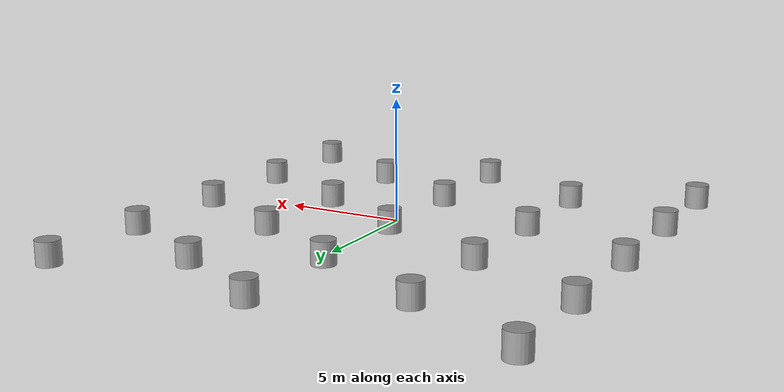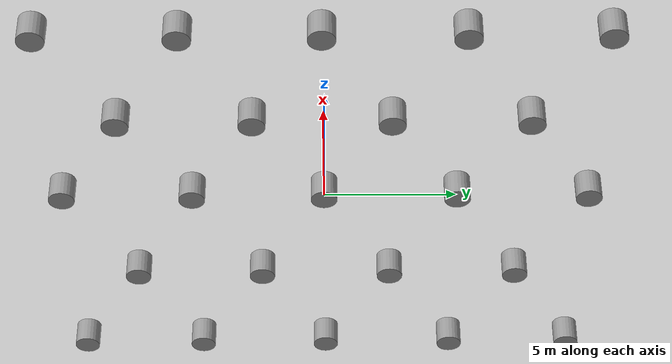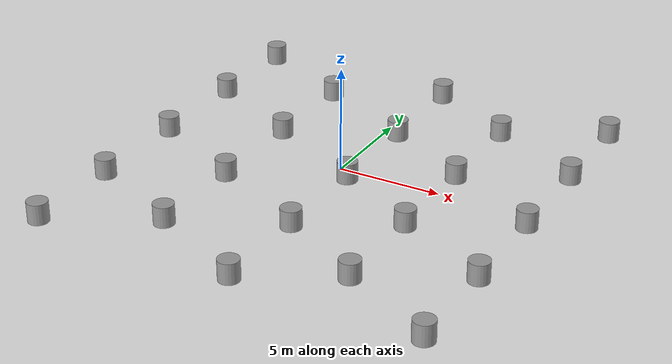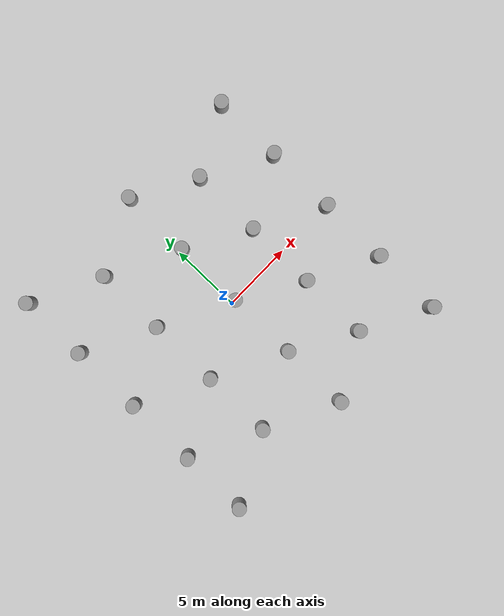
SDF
<?xml version='1.0'?>
<sdf version='1.6'>
  <model name='models'>
    <link name='link_0'>
      <inertial>
        <mass>1</mass>
        <inertia>
          <ixx>0.145833</ixx>
          <ixy>0</ixy>
          <ixz>0</ixz>
          <iyy>0.145833</iyy>
          <iyz>0</iyz>
          <izz>0.125</izz>
        </inertia>
      </inertial>
      <pose frame=''>9.32799 -10.0097 0 0 -0 0</pose>
      <visual name='visual'>
        <pose frame=''>0 0 0 0 -0 0</pose>
        <geometry>
          <cylinder>
            <radius>0.5</radius>
            <length>1</length>
          </cylinder>
        </geometry>
        <material>
          <lighting>1</lighting>
          <script>
            <uri>file://media/materials/scripts/gazebo.material</uri>
            <name>Gazebo/Grey</name>
          </script>
        </material>
        <transparency>0</transparency>
        <cast_shadows>1</cast_shadows>
      </visual>
      <collision name='collision'>
        <laser_retro>0</laser_retro>
        <max_contacts>10</max_contacts>
        <pose frame=''>0 0 0 0 -0 0</pose>
        <geometry>
          <cylinder>
            <radius>0.5</radius>
            <length>1</length>
          </cylinder>
        </geometry>
        <surface>
          <friction>
            <ode>
              <mu>1</mu>
              <mu2>1</mu2>
              <fdir1>0 0 0</fdir1>
              <slip1>0</slip1>
              <slip2>0</slip2>
            </ode>
            <torsional>
              <coefficient>1</coefficient>
              <patch_radius>0</patch_radius>
              <surface_radius>0</surface_radius>
              <use_patch_radius>1</use_patch_radius>
              <ode>
                <slip>0</slip>
              </ode>
            </torsional>
          </friction>
          <bounce>
            <restitution_coefficient>0</restitution_coefficient>
            <threshold>1e+06</threshold>
          </bounce>
          <contact>
            <collide_without_contact>0</collide_without_contact>
            <collide_without_contact_bitmask>1</collide_without_contact_bitmask>
            <collide_bitmask>1</collide_bitmask>
            <ode>
              <soft_cfm>0</soft_cfm>
              <soft_erp>0.2</soft_erp>
              <kp>1e+13</kp>
              <kd>1</kd>
              <max_vel>0.01</max_vel>
              <min_depth>0</min_depth>
            </ode>
            <bullet>
              <split_impulse>1</split_impulse>
              <split_impulse_penetration_threshold>-0.01</split_impulse_penetration_threshold>
              <soft_cfm>0</soft_cfm>
              <soft_erp>0.2</soft_erp>
              <kp>1e+13</kp>
              <kd>1</kd>
            </bullet>
          </contact>
        </surface>
      </collision>
    </link>
    <link name='link_0_clone'>
      <inertial>
        <mass>1</mass>
        <inertia>
          <ixx>0.145833</ixx>
          <ixy>0</ixy>
          <ixz>0</ixz>
          <iyy>0.145833</iyy>
          <iyz>0</iyz>
          <izz>0.125</izz>
        </inertia>
      </inertial>
      <pose frame=''>9.32799 5.01502 0 0 -0 0</pose>
      <visual name='visual'>
        <pose frame=''>0 0 0 0 -0 0</pose>
        <geometry>
          <cylinder>
            <radius>0.5</radius>
            <length>1</length>
          </cylinder>
        </geometry>
        <material>
          <lighting>1</lighting>
          <script>
            <uri>file://media/materials/scripts/gazebo.material</uri>
            <name>Gazebo/Grey</name>
          </script>
          <shader type='pixel'/>
        </material>
        <transparency>0</transparency>
        <cast_shadows>1</cast_shadows>
      </visual>
      <collision name='collision'>
        <laser_retro>0</laser_retro>
        <max_contacts>10</max_contacts>
        <pose frame=''>0 0 0 0 -0 0</pose>
        <geometry>
          <cylinder>
            <radius>0.5</radius>
            <length>1</length>
          </cylinder>
        </geometry>
        <surface>
          <friction>
            <ode>
              <mu>1</mu>
              <mu2>1</mu2>
              <fdir1>0 0 0</fdir1>
              <slip1>0</slip1>
              <slip2>0</slip2>
            </ode>
            <torsional>
              <coefficient>1</coefficient>
              <patch_radius>0</patch_radius>
              <surface_radius>0</surface_radius>
              <use_patch_radius>1</use_patch_radius>
              <ode>
                <slip>0</slip>
              </ode>
            </torsional>
          </friction>
          <bounce>
            <restitution_coefficient>0</restitution_coefficient>
            <threshold>1e+06</threshold>
          </bounce>
          <contact>
            <collide_without_contact>0</collide_without_contact>
            <collide_without_contact_bitmask>1</collide_without_contact_bitmask>
            <collide_bitmask>1</collide_bitmask>
            <ode>
              <soft_cfm>0</soft_cfm>
              <soft_erp>0.2</soft_erp>
              <kp>1e+13</kp>
              <kd>1</kd>
              <max_vel>0.01</max_vel>
              <min_depth>0</min_depth>
            </ode>
            <bullet>
              <split_impulse>1</split_impulse>
              <split_impulse_penetration_threshold>-0.01</split_impulse_penetration_threshold>
              <soft_cfm>0</soft_cfm>
              <soft_erp>0.2</soft_erp>
              <kp>1e+13</kp>
              <kd>1</kd>
            </bullet>
          </contact>
        </surface>
      </collision>
    </link>
    <link name='link_0_clone_0'>
      <inertial>
        <mass>1</mass>
        <inertia>
          <ixx>0.145833</ixx>
          <ixy>0</ixy>
          <ixz>0</ixz>
          <iyy>0.145833</iyy>
          <iyz>0</iyz>
          <izz>0.125</izz>
        </inertia>
      </inertial>
      <pose frame=''>9.32799 9.97544 0 0 -0 0</pose>
      <visual name='visual'>
        <pose frame=''>0 0 0 0 -0 0</pose>
        <geometry>
          <cylinder>
            <radius>0.5</radius>
            <length>1</length>
          </cylinder>
        </geometry>
        <material>
          <lighting>1</lighting>
          <script>
            <uri>file://media/materials/scripts/gazebo.material</uri>
            <name>Gazebo/Grey</name>
          </script>
          <shader type='pixel'/>
        </material>
        <transparency>0</transparency>
        <cast_shadows>1</cast_shadows>
      </visual>
      <collision name='collision'>
        <laser_retro>0</laser_retro>
        <max_contacts>10</max_contacts>
        <pose frame=''>0 0 0 0 -0 0</pose>
        <geometry>
          <cylinder>
            <radius>0.5</radius>
            <length>1</length>
          </cylinder>
        </geometry>
        <surface>
          <friction>
            <ode>
              <mu>1</mu>
              <mu2>1</mu2>
              <fdir1>0 0 0</fdir1>
              <slip1>0</slip1>
              <slip2>0</slip2>
            </ode>
            <torsional>
              <coefficient>1</coefficient>
              <patch_radius>0</patch_radius>
              <surface_radius>0</surface_radius>
              <use_patch_radius>1</use_patch_radius>
              <ode>
                <slip>0</slip>
              </ode>
            </torsional>
          </friction>
          <bounce>
            <restitution_coefficient>0</restitution_coefficient>
            <threshold>1e+06</threshold>
          </bounce>
          <contact>
            <collide_without_contact>0</collide_without_contact>
            <collide_without_contact_bitmask>1</collide_without_contact_bitmask>
            <collide_bitmask>1</collide_bitmask>
            <ode>
              <soft_cfm>0</soft_cfm>
              <soft_erp>0.2</soft_erp>
              <kp>1e+13</kp>
              <kd>1</kd>
              <max_vel>0.01</max_vel>
              <min_depth>0</min_depth>
            </ode>
            <bullet>
              <split_impulse>1</split_impulse>
              <split_impulse_penetration_threshold>-0.01</split_impulse_penetration_threshold>
              <soft_cfm>0</soft_cfm>
              <soft_erp>0.2</soft_erp>
              <kp>1e+13</kp>
              <kd>1</kd>
            </bullet>
          </contact>
        </surface>
      </collision>
    </link>
    <link name='link_0_clone_1'>
      <inertial>
        <mass>1</mass>
        <inertia>
          <ixx>0.145833</ixx>
          <ixy>0</ixy>
          <ixz>0</ixz>
          <iyy>0.145833</iyy>
          <iyz>0</iyz>
          <izz>0.125</izz>
        </inertia>
      </inertial>
      <pose frame=''>0.335826 -9.97431 0 0 -0 0</pose>
      <visual name='visual'>
        <pose frame=''>0 0 0 0 -0 0</pose>
        <geometry>
          <cylinder>
            <radius>0.5</radius>
            <length>1</length>
          </cylinder>
        </geometry>
        <material>
          <lighting>1</lighting>
          <script>
            <uri>file://media/materials/scripts/gazebo.material</uri>
            <name>Gazebo/Grey</name>
          </script>
          <shader type='pixel'/>
        </material>
        <transparency>0</transparency>
        <cast_shadows>1</cast_shadows>
      </visual>
      <collision name='collision'>
        <laser_retro>0</laser_retro>
        <max_contacts>10</max_contacts>
        <pose frame=''>0 0 0 0 -0 0</pose>
        <geometry>
          <cylinder>
            <radius>0.5</radius>
            <length>1</length>
          </cylinder>
        </geometry>
        <surface>
          <friction>
            <ode>
              <mu>1</mu>
              <mu2>1</mu2>
              <fdir1>0 0 0</fdir1>
              <slip1>0</slip1>
              <slip2>0</slip2>
            </ode>
            <torsional>
              <coefficient>1</coefficient>
              <patch_radius>0</patch_radius>
              <surface_radius>0</surface_radius>
              <use_patch_radius>1</use_patch_radius>
              <ode>
                <slip>0</slip>
              </ode>
            </torsional>
          </friction>
          <bounce>
            <restitution_coefficient>0</restitution_coefficient>
            <threshold>1e+06</threshold>
          </bounce>
          <contact>
            <collide_without_contact>0</collide_without_contact>
            <collide_without_contact_bitmask>1</collide_without_contact_bitmask>
            <collide_bitmask>1</collide_bitmask>
            <ode>
              <soft_cfm>0</soft_cfm>
              <soft_erp>0.2</soft_erp>
              <kp>1e+13</kp>
              <kd>1</kd>
              <max_vel>0.01</max_vel>
              <min_depth>0</min_depth>
            </ode>
            <bullet>
              <split_impulse>1</split_impulse>
              <split_impulse_penetration_threshold>-0.01</split_impulse_penetration_threshold>
              <soft_cfm>0</soft_cfm>
              <soft_erp>0.2</soft_erp>
              <kp>1e+13</kp>
              <kd>1</kd>
            </bullet>
          </contact>
        </surface>
      </collision>
    </link>
    <link name='link_0_clone_10'>
      <inertial>
        <mass>1</mass>
        <inertia>
          <ixx>0.145833</ixx>
          <ixy>0</ixy>
          <ixz>0</ixz>
          <iyy>0.145833</iyy>
          <iyz>0</iyz>
          <izz>0.125</izz>
        </inertia>
      </inertial>
      <pose frame=''>-4.70348 7.55552 0 0 -0 0</pose>
      <visual name='visual'>
        <pose frame=''>0 0 0 0 -0 0</pose>
        <geometry>
          <cylinder>
            <radius>0.5</radius>
            <length>1</length>
          </cylinder>
        </geometry>
        <material>
          <lighting>1</lighting>
          <script>
            <uri>file://media/materials/scripts/gazebo.material</uri>
            <name>Gazebo/Grey</name>
          </script>
          <shader type='pixel'/>
        </material>
        <transparency>0</transparency>
        <cast_shadows>1</cast_shadows>
      </visual>
      <collision name='collision'>
        <laser_retro>0</laser_retro>
        <max_contacts>10</max_contacts>
        <pose frame=''>0 0 0 0 -0 0</pose>
        <geometry>
          <cylinder>
            <radius>0.5</radius>
            <length>1</length>
          </cylinder>
        </geometry>
        <surface>
          <friction>
            <ode>
              <mu>1</mu>
              <mu2>1</mu2>
              <fdir1>0 0 0</fdir1>
              <slip1>0</slip1>
              <slip2>0</slip2>
            </ode>
            <torsional>
              <coefficient>1</coefficient>
              <patch_radius>0</patch_radius>
              <surface_radius>0</surface_radius>
              <use_patch_radius>1</use_patch_radius>
              <ode>
                <slip>0</slip>
              </ode>
            </torsional>
          </friction>
          <bounce>
            <restitution_coefficient>0</restitution_coefficient>
            <threshold>1e+06</threshold>
          </bounce>
          <contact>
            <collide_without_contact>0</collide_without_contact>
            <collide_without_contact_bitmask>1</collide_without_contact_bitmask>
            <collide_bitmask>1</collide_bitmask>
            <ode>
              <soft_cfm>0</soft_cfm>
              <soft_erp>0.2</soft_erp>
              <kp>1e+13</kp>
              <kd>1</kd>
              <max_vel>0.01</max_vel>
              <min_depth>0</min_depth>
            </ode>
            <bullet>
              <split_impulse>1</split_impulse>
              <split_impulse_penetration_threshold>-0.01</split_impulse_penetration_threshold>
              <soft_cfm>0</soft_cfm>
              <soft_erp>0.2</soft_erp>
              <kp>1e+13</kp>
              <kd>1</kd>
            </bullet>
          </contact>
        </surface>
      </collision>
    </link>
    <link name='link_0_clone_11'>
      <inertial>
        <mass>1</mass>
        <inertia>
          <ixx>0.145833</ixx>
          <ixy>0</ixy>
          <ixz>0</ixz>
          <iyy>0.145833</iyy>
          <iyz>0</iyz>
          <izz>0.125</izz>
        </inertia>
      </inertial>
      <pose frame=''>-4.70348 2.55449 0 0 -0 0</pose>
      <visual name='visual'>
        <pose frame=''>0 0 0 0 -0 0</pose>
        <geometry>
          <cylinder>
            <radius>0.5</radius>
            <length>1</length>
          </cylinder>
        </geometry>
        <material>
          <lighting>1</lighting>
          <script>
            <uri>file://media/materials/scripts/gazebo.material</uri>
            <name>Gazebo/Grey</name>
          </script>
          <shader type='pixel'/>
        </material>
        <transparency>0</transparency>
        <cast_shadows>1</cast_shadows>
      </visual>
      <collision name='collision'>
        <laser_retro>0</laser_retro>
        <max_contacts>10</max_contacts>
        <pose frame=''>0 0 0 0 -0 0</pose>
        <geometry>
          <cylinder>
            <radius>0.5</radius>
            <length>1</length>
          </cylinder>
        </geometry>
        <surface>
          <friction>
            <ode>
              <mu>1</mu>
              <mu2>1</mu2>
              <fdir1>0 0 0</fdir1>
              <slip1>0</slip1>
              <slip2>0</slip2>
            </ode>
            <torsional>
              <coefficient>1</coefficient>
              <patch_radius>0</patch_radius>
              <surface_radius>0</surface_radius>
              <use_patch_radius>1</use_patch_radius>
              <ode>
                <slip>0</slip>
              </ode>
            </torsional>
          </friction>
          <bounce>
            <restitution_coefficient>0</restitution_coefficient>
            <threshold>1e+06</threshold>
          </bounce>
          <contact>
            <collide_without_contact>0</collide_without_contact>
            <collide_without_contact_bitmask>1</collide_without_contact_bitmask>
            <collide_bitmask>1</collide_bitmask>
            <ode>
              <soft_cfm>0</soft_cfm>
              <soft_erp>0.2</soft_erp>
              <kp>1e+13</kp>
              <kd>1</kd>
              <max_vel>0.01</max_vel>
              <min_depth>0</min_depth>
            </ode>
            <bullet>
              <split_impulse>1</split_impulse>
              <split_impulse_penetration_threshold>-0.01</split_impulse_penetration_threshold>
              <soft_cfm>0</soft_cfm>
              <soft_erp>0.2</soft_erp>
              <kp>1e+13</kp>
              <kd>1</kd>
            </bullet>
          </contact>
        </surface>
      </collision>
    </link>
    <link name='link_0_clone_12'>
      <inertial>
        <mass>1</mass>
        <inertia>
          <ixx>0.145833</ixx>
          <ixy>0</ixy>
          <ixz>0</ixz>
          <iyy>0.145833</iyy>
          <iyz>0</iyz>
          <izz>0.125</izz>
        </inertia>
      </inertial>
      <pose frame=''>-4.70348 -2.5171 0 0 -0 0</pose>
      <visual name='visual'>
        <pose frame=''>0 0 0 0 -0 0</pose>
        <geometry>
          <cylinder>
            <radius>0.5</radius>
            <length>1</length>
          </cylinder>
        </geometry>
        <material>
          <lighting>1</lighting>
          <script>
            <uri>file://media/materials/scripts/gazebo.material</uri>
            <name>Gazebo/Grey</name>
          </script>
          <shader type='pixel'/>
        </material>
        <transparency>0</transparency>
        <cast_shadows>1</cast_shadows>
      </visual>
      <collision name='collision'>
        <laser_retro>0</laser_retro>
        <max_contacts>10</max_contacts>
        <pose frame=''>0 0 0 0 -0 0</pose>
        <geometry>
          <cylinder>
            <radius>0.5</radius>
            <length>1</length>
          </cylinder>
        </geometry>
        <surface>
          <friction>
            <ode>
              <mu>1</mu>
              <mu2>1</mu2>
              <fdir1>0 0 0</fdir1>
              <slip1>0</slip1>
              <slip2>0</slip2>
            </ode>
            <torsional>
              <coefficient>1</coefficient>
              <patch_radius>0</patch_radius>
              <surface_radius>0</surface_radius>
              <use_patch_radius>1</use_patch_radius>
              <ode>
                <slip>0</slip>
              </ode>
            </torsional>
          </friction>
          <bounce>
            <restitution_coefficient>0</restitution_coefficient>
            <threshold>1e+06</threshold>
          </bounce>
          <contact>
            <collide_without_contact>0</collide_without_contact>
            <collide_without_contact_bitmask>1</collide_without_contact_bitmask>
            <collide_bitmask>1</collide_bitmask>
            <ode>
              <soft_cfm>0</soft_cfm>
              <soft_erp>0.2</soft_erp>
              <kp>1e+13</kp>
              <kd>1</kd>
              <max_vel>0.01</max_vel>
              <min_depth>0</min_depth>
            </ode>
            <bullet>
              <split_impulse>1</split_impulse>
              <split_impulse_penetration_threshold>-0.01</split_impulse_penetration_threshold>
              <soft_cfm>0</soft_cfm>
              <soft_erp>0.2</soft_erp>
              <kp>1e+13</kp>
              <kd>1</kd>
            </bullet>
          </contact>
        </surface>
      </collision>
    </link>
    <link name='link_0_clone_13'>
      <inertial>
        <mass>1</mass>
        <inertia>
          <ixx>0.145833</ixx>
          <ixy>0</ixy>
          <ixz>0</ixz>
          <iyy>0.145833</iyy>
          <iyz>0</iyz>
          <izz>0.125</izz>
        </inertia>
      </inertial>
      <pose frame=''>-4.70348 -7.46753 0 0 -0 0</pose>
      <visual name='visual'>
        <pose frame=''>0 0 0 0 -0 0</pose>
        <geometry>
          <cylinder>
            <radius>0.5</radius>
            <length>1</length>
          </cylinder>
        </geometry>
        <material>
          <lighting>1</lighting>
          <script>
            <uri>file://media/materials/scripts/gazebo.material</uri>
            <name>Gazebo/Grey</name>
          </script>
          <shader type='pixel'/>
        </material>
        <transparency>0</transparency>
        <cast_shadows>1</cast_shadows>
      </visual>
      <collision name='collision'>
        <laser_retro>0</laser_retro>
        <max_contacts>10</max_contacts>
        <pose frame=''>0 0 0 0 -0 0</pose>
        <geometry>
          <cylinder>
            <radius>0.5</radius>
            <length>1</length>
          </cylinder>
        </geometry>
        <surface>
          <friction>
            <ode>
              <mu>1</mu>
              <mu2>1</mu2>
              <fdir1>0 0 0</fdir1>
              <slip1>0</slip1>
              <slip2>0</slip2>
            </ode>
            <torsional>
              <coefficient>1</coefficient>
              <patch_radius>0</patch_radius>
              <surface_radius>0</surface_radius>
              <use_patch_radius>1</use_patch_radius>
              <ode>
                <slip>0</slip>
              </ode>
            </torsional>
          </friction>
          <bounce>
            <restitution_coefficient>0</restitution_coefficient>
            <threshold>1e+06</threshold>
          </bounce>
          <contact>
            <collide_without_contact>0</collide_without_contact>
            <collide_without_contact_bitmask>1</collide_without_contact_bitmask>
            <collide_bitmask>1</collide_bitmask>
            <ode>
              <soft_cfm>0</soft_cfm>
              <soft_erp>0.2</soft_erp>
              <kp>1e+13</kp>
              <kd>1</kd>
              <max_vel>0.01</max_vel>
              <min_depth>0</min_depth>
            </ode>
            <bullet>
              <split_impulse>1</split_impulse>
              <split_impulse_penetration_threshold>-0.01</split_impulse_penetration_threshold>
              <soft_cfm>0</soft_cfm>
              <soft_erp>0.2</soft_erp>
              <kp>1e+13</kp>
              <kd>1</kd>
            </bullet>
          </contact>
        </surface>
      </collision>
    </link>
    <link name='link_0_clone_14'>
      <inertial>
        <mass>1</mass>
        <inertia>
          <ixx>0.145833</ixx>
          <ixy>0</ixy>
          <ixz>0</ixz>
          <iyy>0.145833</iyy>
          <iyz>0</iyz>
          <izz>0.125</izz>
        </inertia>
      </inertial>
      <pose frame=''>4.68452 -7.54389 0 0 -0 0</pose>
      <visual name='visual'>
        <pose frame=''>0 0 0 0 -0 0</pose>
        <geometry>
          <cylinder>
            <radius>0.5</radius>
            <length>1</length>
          </cylinder>
        </geometry>
        <material>
          <lighting>1</lighting>
          <script>
            <uri>file://media/materials/scripts/gazebo.material</uri>
            <name>Gazebo/Grey</name>
          </script>
          <shader type='pixel'/>
        </material>
        <transparency>0</transparency>
        <cast_shadows>1</cast_shadows>
      </visual>
      <collision name='collision'>
        <laser_retro>0</laser_retro>
        <max_contacts>10</max_contacts>
        <pose frame=''>0 0 0 0 -0 0</pose>
        <geometry>
          <cylinder>
            <radius>0.5</radius>
            <length>1</length>
          </cylinder>
        </geometry>
        <surface>
          <friction>
            <ode>
              <mu>1</mu>
              <mu2>1</mu2>
              <fdir1>0 0 0</fdir1>
              <slip1>0</slip1>
              <slip2>0</slip2>
            </ode>
            <torsional>
              <coefficient>1</coefficient>
              <patch_radius>0</patch_radius>
              <surface_radius>0</surface_radius>
              <use_patch_radius>1</use_patch_radius>
              <ode>
                <slip>0</slip>
              </ode>
            </torsional>
          </friction>
          <bounce>
            <restitution_coefficient>0</restitution_coefficient>
            <threshold>1e+06</threshold>
          </bounce>
          <contact>
            <collide_without_contact>0</collide_without_contact>
            <collide_without_contact_bitmask>1</collide_without_contact_bitmask>
            <collide_bitmask>1</collide_bitmask>
            <ode>
              <soft_cfm>0</soft_cfm>
              <soft_erp>0.2</soft_erp>
              <kp>1e+13</kp>
              <kd>1</kd>
              <max_vel>0.01</max_vel>
              <min_depth>0</min_depth>
            </ode>
            <bullet>
              <split_impulse>1</split_impulse>
              <split_impulse_penetration_threshold>-0.01</split_impulse_penetration_threshold>
              <soft_cfm>0</soft_cfm>
              <soft_erp>0.2</soft_erp>
              <kp>1e+13</kp>
              <kd>1</kd>
            </bullet>
          </contact>
        </surface>
      </collision>
    </link>
    <link name='link_0_clone_15'>
      <inertial>
        <mass>1</mass>
        <inertia>
          <ixx>0.145833</ixx>
          <ixy>0</ixy>
          <ixz>0</ixz>
          <iyy>0.145833</iyy>
          <iyz>0</iyz>
          <izz>0.125</izz>
        </inertia>
      </inertial>
      <pose frame=''>4.68452 -2.59975 0 0 -0 0</pose>
      <visual name='visual'>
        <pose frame=''>0 0 0 0 -0 0</pose>
        <geometry>
          <cylinder>
            <radius>0.5</radius>
            <length>1</length>
          </cylinder>
        </geometry>
        <material>
          <lighting>1</lighting>
          <script>
            <uri>file://media/materials/scripts/gazebo.material</uri>
            <name>Gazebo/Grey</name>
          </script>
          <shader type='pixel'/>
        </material>
        <transparency>0</transparency>
        <cast_shadows>1</cast_shadows>
      </visual>
      <collision name='collision'>
        <laser_retro>0</laser_retro>
        <max_contacts>10</max_contacts>
        <pose frame=''>0 0 0 0 -0 0</pose>
        <geometry>
          <cylinder>
            <radius>0.5</radius>
            <length>1</length>
          </cylinder>
        </geometry>
        <surface>
          <friction>
            <ode>
              <mu>1</mu>
              <mu2>1</mu2>
              <fdir1>0 0 0</fdir1>
              <slip1>0</slip1>
              <slip2>0</slip2>
            </ode>
            <torsional>
              <coefficient>1</coefficient>
              <patch_radius>0</patch_radius>
              <surface_radius>0</surface_radius>
              <use_patch_radius>1</use_patch_radius>
              <ode>
                <slip>0</slip>
              </ode>
            </torsional>
          </friction>
          <bounce>
            <restitution_coefficient>0</restitution_coefficient>
            <threshold>1e+06</threshold>
          </bounce>
          <contact>
            <collide_without_contact>0</collide_without_contact>
            <collide_without_contact_bitmask>1</collide_without_contact_bitmask>
            <collide_bitmask>1</collide_bitmask>
            <ode>
              <soft_cfm>0</soft_cfm>
              <soft_erp>0.2</soft_erp>
              <kp>1e+13</kp>
              <kd>1</kd>
              <max_vel>0.01</max_vel>
              <min_depth>0</min_depth>
            </ode>
            <bullet>
              <split_impulse>1</split_impulse>
              <split_impulse_penetration_threshold>-0.01</split_impulse_penetration_threshold>
              <soft_cfm>0</soft_cfm>
              <soft_erp>0.2</soft_erp>
              <kp>1e+13</kp>
              <kd>1</kd>
            </bullet>
          </contact>
        </surface>
      </collision>
    </link>
    <link name='link_0_clone_16'>
      <inertial>
        <mass>1</mass>
        <inertia>
          <ixx>0.145833</ixx>
          <ixy>0</ixy>
          <ixz>0</ixz>
          <iyy>0.145833</iyy>
          <iyz>0</iyz>
          <izz>0.125</izz>
        </inertia>
      </inertial>
      <pose frame=''>4.68452 2.49863 0 0 -0 0</pose>
      <visual name='visual'>
        <pose frame=''>0 0 0 0 -0 0</pose>
        <geometry>
          <cylinder>
            <radius>0.5</radius>
            <length>1</length>
          </cylinder>
        </geometry>
        <material>
          <lighting>1</lighting>
          <script>
            <uri>file://media/materials/scripts/gazebo.material</uri>
            <name>Gazebo/Grey</name>
          </script>
          <shader type='pixel'/>
        </material>
        <transparency>0</transparency>
        <cast_shadows>1</cast_shadows>
      </visual>
      <collision name='collision'>
        <laser_retro>0</laser_retro>
        <max_contacts>10</max_contacts>
        <pose frame=''>0 0 0 0 -0 0</pose>
        <geometry>
          <cylinder>
            <radius>0.5</radius>
            <length>1</length>
          </cylinder>
        </geometry>
        <surface>
          <friction>
            <ode>
              <mu>1</mu>
              <mu2>1</mu2>
              <fdir1>0 0 0</fdir1>
              <slip1>0</slip1>
              <slip2>0</slip2>
            </ode>
            <torsional>
              <coefficient>1</coefficient>
              <patch_radius>0</patch_radius>
              <surface_radius>0</surface_radius>
              <use_patch_radius>1</use_patch_radius>
              <ode>
                <slip>0</slip>
              </ode>
            </torsional>
          </friction>
          <bounce>
            <restitution_coefficient>0</restitution_coefficient>
            <threshold>1e+06</threshold>
          </bounce>
          <contact>
            <collide_without_contact>0</collide_without_contact>
            <collide_without_contact_bitmask>1</collide_without_contact_bitmask>
            <collide_bitmask>1</collide_bitmask>
            <ode>
              <soft_cfm>0</soft_cfm>
              <soft_erp>0.2</soft_erp>
              <kp>1e+13</kp>
              <kd>1</kd>
              <max_vel>0.01</max_vel>
              <min_depth>0</min_depth>
            </ode>
            <bullet>
              <split_impulse>1</split_impulse>
              <split_impulse_penetration_threshold>-0.01</split_impulse_penetration_threshold>
              <soft_cfm>0</soft_cfm>
              <soft_erp>0.2</soft_erp>
              <kp>1e+13</kp>
              <kd>1</kd>
            </bullet>
          </contact>
        </surface>
      </collision>
    </link>
    <link name='link_0_clone_17'>
      <inertial>
        <mass>1</mass>
        <inertia>
          <ixx>0.145833</ixx>
          <ixy>0</ixy>
          <ixz>0</ixz>
          <iyy>0.145833</iyy>
          <iyz>0</iyz>
          <izz>0.125</izz>
        </inertia>
      </inertial>
      <pose frame=''>4.68452 7.53989 0 0 -0 0</pose>
      <visual name='visual'>
        <pose frame=''>0 0 0 0 -0 0</pose>
        <geometry>
          <cylinder>
            <radius>0.5</radius>
            <length>1</length>
          </cylinder>
        </geometry>
        <material>
          <lighting>1</lighting>
          <script>
            <uri>file://media/materials/scripts/gazebo.material</uri>
            <name>Gazebo/Grey</name>
          </script>
          <shader type='pixel'/>
        </material>
        <transparency>0</transparency>
        <cast_shadows>1</cast_shadows>
      </visual>
      <collision name='collision'>
        <laser_retro>0</laser_retro>
        <max_contacts>10</max_contacts>
        <pose frame=''>0 0 0 0 -0 0</pose>
        <geometry>
          <cylinder>
            <radius>0.5</radius>
            <length>1</length>
          </cylinder>
        </geometry>
        <surface>
          <friction>
            <ode>
              <mu>1</mu>
              <mu2>1</mu2>
              <fdir1>0 0 0</fdir1>
              <slip1>0</slip1>
              <slip2>0</slip2>
            </ode>
            <torsional>
              <coefficient>1</coefficient>
              <patch_radius>0</patch_radius>
              <surface_radius>0</surface_radius>
              <use_patch_radius>1</use_patch_radius>
              <ode>
                <slip>0</slip>
              </ode>
            </torsional>
          </friction>
          <bounce>
            <restitution_coefficient>0</restitution_coefficient>
            <threshold>1e+06</threshold>
          </bounce>
          <contact>
            <collide_without_contact>0</collide_without_contact>
            <collide_without_contact_bitmask>1</collide_without_contact_bitmask>
            <collide_bitmask>1</collide_bitmask>
            <ode>
              <soft_cfm>0</soft_cfm>
              <soft_erp>0.2</soft_erp>
              <kp>1e+13</kp>
              <kd>1</kd>
              <max_vel>0.01</max_vel>
              <min_depth>0</min_depth>
            </ode>
            <bullet>
              <split_impulse>1</split_impulse>
              <split_impulse_penetration_threshold>-0.01</split_impulse_penetration_threshold>
              <soft_cfm>0</soft_cfm>
              <soft_erp>0.2</soft_erp>
              <kp>1e+13</kp>
              <kd>1</kd>
            </bullet>
          </contact>
        </surface>
      </collision>
    </link>
    <link name='link_0_clone_2'>
      <inertial>
        <mass>1</mass>
        <inertia>
          <ixx>0.145833</ixx>
          <ixy>0</ixy>
          <ixz>0</ixz>
          <iyy>0.145833</iyy>
          <iyz>0</iyz>
          <izz>0.125</izz>
        </inertia>
      </inertial>
      <pose frame=''>0.335826 -5.03169 0 0 -0 0</pose>
      <visual name='visual'>
        <pose frame=''>0 0 0 0 -0 0</pose>
        <geometry>
          <cylinder>
            <radius>0.5</radius>
            <length>1</length>
          </cylinder>
        </geometry>
        <material>
          <lighting>1</lighting>
          <script>
            <uri>file://media/materials/scripts/gazebo.material</uri>
            <name>Gazebo/Grey</name>
          </script>
          <shader type='pixel'/>
        </material>
        <transparency>0</transparency>
        <cast_shadows>1</cast_shadows>
      </visual>
      <collision name='collision'>
        <laser_retro>0</laser_retro>
        <max_contacts>10</max_contacts>
        <pose frame=''>0 0 0 0 -0 0</pose>
        <geometry>
          <cylinder>
            <radius>0.5</radius>
            <length>1</length>
          </cylinder>
        </geometry>
        <surface>
          <friction>
            <ode>
              <mu>1</mu>
              <mu2>1</mu2>
              <fdir1>0 0 0</fdir1>
              <slip1>0</slip1>
              <slip2>0</slip2>
            </ode>
            <torsional>
              <coefficient>1</coefficient>
              <patch_radius>0</patch_radius>
              <surface_radius>0</surface_radius>
              <use_patch_radius>1</use_patch_radius>
              <ode>
                <slip>0</slip>
              </ode>
            </torsional>
          </friction>
          <bounce>
            <restitution_coefficient>0</restitution_coefficient>
            <threshold>1e+06</threshold>
          </bounce>
          <contact>
            <collide_without_contact>0</collide_without_contact>
            <collide_without_contact_bitmask>1</collide_without_contact_bitmask>
            <collide_bitmask>1</collide_bitmask>
            <ode>
              <soft_cfm>0</soft_cfm>
              <soft_erp>0.2</soft_erp>
              <kp>1e+13</kp>
              <kd>1</kd>
              <max_vel>0.01</max_vel>
              <min_depth>0</min_depth>
            </ode>
            <bullet>
              <split_impulse>1</split_impulse>
              <split_impulse_penetration_threshold>-0.01</split_impulse_penetration_threshold>
              <soft_cfm>0</soft_cfm>
              <soft_erp>0.2</soft_erp>
              <kp>1e+13</kp>
              <kd>1</kd>
            </bullet>
          </contact>
        </surface>
      </collision>
    </link>
    <link name='link_0_clone_3'>
      <inertial>
        <mass>1</mass>
        <inertia>
          <ixx>0.145833</ixx>
          <ixy>0</ixy>
          <ixz>0</ixz>
          <iyy>0.145833</iyy>
          <iyz>0</iyz>
          <izz>0.125</izz>
        </inertia>
      </inertial>
      <pose frame=''>0.335826 -0.013377 0 0 -0 0</pose>
      <visual name='visual'>
        <pose frame=''>0 0 0 0 -0 0</pose>
        <geometry>
          <cylinder>
            <radius>0.5</radius>
            <length>1</length>
          </cylinder>
        </geometry>
        <material>
          <lighting>1</lighting>
          <script>
            <uri>file://media/materials/scripts/gazebo.material</uri>
            <name>Gazebo/Grey</name>
          </script>
          <shader type='pixel'/>
        </material>
        <transparency>0</transparency>
        <cast_shadows>1</cast_shadows>
      </visual>
      <collision name='collision'>
        <laser_retro>0</laser_retro>
        <max_contacts>10</max_contacts>
        <pose frame=''>0 0 0 0 -0 0</pose>
        <geometry>
          <cylinder>
            <radius>0.5</radius>
            <length>1</length>
          </cylinder>
        </geometry>
        <surface>
          <friction>
            <ode>
              <mu>1</mu>
              <mu2>1</mu2>
              <fdir1>0 0 0</fdir1>
              <slip1>0</slip1>
              <slip2>0</slip2>
            </ode>
            <torsional>
              <coefficient>1</coefficient>
              <patch_radius>0</patch_radius>
              <surface_radius>0</surface_radius>
              <use_patch_radius>1</use_patch_radius>
              <ode>
                <slip>0</slip>
              </ode>
            </torsional>
          </friction>
          <bounce>
            <restitution_coefficient>0</restitution_coefficient>
            <threshold>1e+06</threshold>
          </bounce>
          <contact>
            <collide_without_contact>0</collide_without_contact>
            <collide_without_contact_bitmask>1</collide_without_contact_bitmask>
            <collide_bitmask>1</collide_bitmask>
            <ode>
              <soft_cfm>0</soft_cfm>
              <soft_erp>0.2</soft_erp>
              <kp>1e+13</kp>
              <kd>1</kd>
              <max_vel>0.01</max_vel>
              <min_depth>0</min_depth>
            </ode>
            <bullet>
              <split_impulse>1</split_impulse>
              <split_impulse_penetration_threshold>-0.01</split_impulse_penetration_threshold>
              <soft_cfm>0</soft_cfm>
              <soft_erp>0.2</soft_erp>
              <kp>1e+13</kp>
              <kd>1</kd>
            </bullet>
          </contact>
        </surface>
      </collision>
    </link>
    <link name='link_0_clone_4'>
      <inertial>
        <mass>1</mass>
        <inertia>
          <ixx>0.145833</ixx>
          <ixy>0</ixy>
          <ixz>0</ixz>
          <iyy>0.145833</iyy>
          <iyz>0</iyz>
          <izz>0.125</izz>
        </inertia>
      </inertial>
      <pose frame=''>0.335826 5.04148 0 0 -0 0</pose>
      <visual name='visual'>
        <pose frame=''>0 0 0 0 -0 0</pose>
        <geometry>
          <cylinder>
            <radius>0.5</radius>
            <length>1</length>
          </cylinder>
        </geometry>
        <material>
          <lighting>1</lighting>
          <script>
            <uri>file://media/materials/scripts/gazebo.material</uri>
            <name>Gazebo/Grey</name>
          </script>
          <shader type='pixel'/>
        </material>
        <transparency>0</transparency>
        <cast_shadows>1</cast_shadows>
      </visual>
      <collision name='collision'>
        <laser_retro>0</laser_retro>
        <max_contacts>10</max_contacts>
        <pose frame=''>0 0 0 0 -0 0</pose>
        <geometry>
          <cylinder>
            <radius>0.5</radius>
            <length>1</length>
          </cylinder>
        </geometry>
        <surface>
          <friction>
            <ode>
              <mu>1</mu>
              <mu2>1</mu2>
              <fdir1>0 0 0</fdir1>
              <slip1>0</slip1>
              <slip2>0</slip2>
            </ode>
            <torsional>
              <coefficient>1</coefficient>
              <patch_radius>0</patch_radius>
              <surface_radius>0</surface_radius>
              <use_patch_radius>1</use_patch_radius>
              <ode>
                <slip>0</slip>
              </ode>
            </torsional>
          </friction>
          <bounce>
            <restitution_coefficient>0</restitution_coefficient>
            <threshold>1e+06</threshold>
          </bounce>
          <contact>
            <collide_without_contact>0</collide_without_contact>
            <collide_without_contact_bitmask>1</collide_without_contact_bitmask>
            <collide_bitmask>1</collide_bitmask>
            <ode>
              <soft_cfm>0</soft_cfm>
              <soft_erp>0.2</soft_erp>
              <kp>1e+13</kp>
              <kd>1</kd>
              <max_vel>0.01</max_vel>
              <min_depth>0</min_depth>
            </ode>
            <bullet>
              <split_impulse>1</split_impulse>
              <split_impulse_penetration_threshold>-0.01</split_impulse_penetration_threshold>
              <soft_cfm>0</soft_cfm>
              <soft_erp>0.2</soft_erp>
              <kp>1e+13</kp>
              <kd>1</kd>
            </bullet>
          </contact>
        </surface>
      </collision>
    </link>
    <link name='link_0_clone_5'>
      <inertial>
        <mass>1</mass>
        <inertia>
          <ixx>0.145833</ixx>
          <ixy>0</ixy>
          <ixz>0</ixz>
          <iyy>0.145833</iyy>
          <iyz>0</iyz>
          <izz>0.125</izz>
        </inertia>
      </inertial>
      <pose frame=''>0.335826 10.0188 0 0 -0 0</pose>
      <visual name='visual'>
        <pose frame=''>0 0 0 0 -0 0</pose>
        <geometry>
          <cylinder>
            <radius>0.5</radius>
            <length>1</length>
          </cylinder>
        </geometry>
        <material>
          <lighting>1</lighting>
          <script>
            <uri>file://media/materials/scripts/gazebo.material</uri>
            <name>Gazebo/Grey</name>
          </script>
          <shader type='pixel'/>
        </material>
        <transparency>0</transparency>
        <cast_shadows>1</cast_shadows>
      </visual>
      <collision name='collision'>
        <laser_retro>0</laser_retro>
        <max_contacts>10</max_contacts>
        <pose frame=''>0 0 0 0 -0 0</pose>
        <geometry>
          <cylinder>
            <radius>0.5</radius>
            <length>1</length>
          </cylinder>
        </geometry>
        <surface>
          <friction>
            <ode>
              <mu>1</mu>
              <mu2>1</mu2>
              <fdir1>0 0 0</fdir1>
              <slip1>0</slip1>
              <slip2>0</slip2>
            </ode>
            <torsional>
              <coefficient>1</coefficient>
              <patch_radius>0</patch_radius>
              <surface_radius>0</surface_radius>
              <use_patch_radius>1</use_patch_radius>
              <ode>
                <slip>0</slip>
              </ode>
            </torsional>
          </friction>
          <bounce>
            <restitution_coefficient>0</restitution_coefficient>
            <threshold>1e+06</threshold>
          </bounce>
          <contact>
            <collide_without_contact>0</collide_without_contact>
            <collide_without_contact_bitmask>1</collide_without_contact_bitmask>
            <collide_bitmask>1</collide_bitmask>
            <ode>
              <soft_cfm>0</soft_cfm>
              <soft_erp>0.2</soft_erp>
              <kp>1e+13</kp>
              <kd>1</kd>
              <max_vel>0.01</max_vel>
              <min_depth>0</min_depth>
            </ode>
            <bullet>
              <split_impulse>1</split_impulse>
              <split_impulse_penetration_threshold>-0.01</split_impulse_penetration_threshold>
              <soft_cfm>0</soft_cfm>
              <soft_erp>0.2</soft_erp>
              <kp>1e+13</kp>
              <kd>1</kd>
            </bullet>
          </contact>
        </surface>
      </collision>
    </link>
    <link name='link_0_clone_6'>
      <inertial>
        <mass>1</mass>
        <inertia>
          <ixx>0.145833</ixx>
          <ixy>0</ixy>
          <ixz>0</ixz>
          <iyy>0.145833</iyy>
          <iyz>0</iyz>
          <izz>0.125</izz>
        </inertia>
      </inertial>
      <pose frame=''>-9.64865 -5.14714 0 0 -0 0</pose>
      <visual name='visual'>
        <pose frame=''>0 0 0 0 -0 0</pose>
        <geometry>
          <cylinder>
            <radius>0.5</radius>
            <length>1</length>
          </cylinder>
        </geometry>
        <material>
          <lighting>1</lighting>
          <script>
            <uri>file://media/materials/scripts/gazebo.material</uri>
            <name>Gazebo/Grey</name>
          </script>
          <shader type='pixel'/>
        </material>
        <transparency>0</transparency>
        <cast_shadows>1</cast_shadows>
      </visual>
      <collision name='collision'>
        <laser_retro>0</laser_retro>
        <max_contacts>10</max_contacts>
        <pose frame=''>0 0 0 0 -0 0</pose>
        <geometry>
          <cylinder>
            <radius>0.5</radius>
            <length>1</length>
          </cylinder>
        </geometry>
        <surface>
          <friction>
            <ode>
              <mu>1</mu>
              <mu2>1</mu2>
              <fdir1>0 0 0</fdir1>
              <slip1>0</slip1>
              <slip2>0</slip2>
            </ode>
            <torsional>
              <coefficient>1</coefficient>
              <patch_radius>0</patch_radius>
              <surface_radius>0</surface_radius>
              <use_patch_radius>1</use_patch_radius>
              <ode>
                <slip>0</slip>
              </ode>
            </torsional>
          </friction>
          <bounce>
            <restitution_coefficient>0</restitution_coefficient>
            <threshold>1e+06</threshold>
          </bounce>
          <contact>
            <collide_without_contact>0</collide_without_contact>
            <collide_without_contact_bitmask>1</collide_without_contact_bitmask>
            <collide_bitmask>1</collide_bitmask>
            <ode>
              <soft_cfm>0</soft_cfm>
              <soft_erp>0.2</soft_erp>
              <kp>1e+13</kp>
              <kd>1</kd>
              <max_vel>0.01</max_vel>
              <min_depth>0</min_depth>
            </ode>
            <bullet>
              <split_impulse>1</split_impulse>
              <split_impulse_penetration_threshold>-0.01</split_impulse_penetration_threshold>
              <soft_cfm>0</soft_cfm>
              <soft_erp>0.2</soft_erp>
              <kp>1e+13</kp>
              <kd>1</kd>
            </bullet>
          </contact>
        </surface>
      </collision>
    </link>
    <link name='link_0_clone_7'>
      <inertial>
        <mass>1</mass>
        <inertia>
          <ixx>0.145833</ixx>
          <ixy>0</ixy>
          <ixz>0</ixz>
          <iyy>0.145833</iyy>
          <iyz>0</iyz>
          <izz>0.125</izz>
        </inertia>
      </inertial>
      <pose frame=''>-9.64865 -0.02138 0 0 -0 0</pose>
      <visual name='visual'>
        <pose frame=''>0 0 0 0 -0 0</pose>
        <geometry>
          <cylinder>
            <radius>0.5</radius>
            <length>1</length>
          </cylinder>
        </geometry>
        <material>
          <lighting>1</lighting>
          <script>
            <uri>file://media/materials/scripts/gazebo.material</uri>
            <name>Gazebo/Grey</name>
          </script>
          <shader type='pixel'/>
        </material>
        <transparency>0</transparency>
        <cast_shadows>1</cast_shadows>
      </visual>
      <collision name='collision'>
        <laser_retro>0</laser_retro>
        <max_contacts>10</max_contacts>
        <pose frame=''>0 0 0 0 -0 0</pose>
        <geometry>
          <cylinder>
            <radius>0.5</radius>
            <length>1</length>
          </cylinder>
        </geometry>
        <surface>
          <friction>
            <ode>
              <mu>1</mu>
              <mu2>1</mu2>
              <fdir1>0 0 0</fdir1>
              <slip1>0</slip1>
              <slip2>0</slip2>
            </ode>
            <torsional>
              <coefficient>1</coefficient>
              <patch_radius>0</patch_radius>
              <surface_radius>0</surface_radius>
              <use_patch_radius>1</use_patch_radius>
              <ode>
                <slip>0</slip>
              </ode>
            </torsional>
          </friction>
          <bounce>
            <restitution_coefficient>0</restitution_coefficient>
            <threshold>1e+06</threshold>
          </bounce>
          <contact>
            <collide_without_contact>0</collide_without_contact>
            <collide_without_contact_bitmask>1</collide_without_contact_bitmask>
            <collide_bitmask>1</collide_bitmask>
            <ode>
              <soft_cfm>0</soft_cfm>
              <soft_erp>0.2</soft_erp>
              <kp>1e+13</kp>
              <kd>1</kd>
              <max_vel>0.01</max_vel>
              <min_depth>0</min_depth>
            </ode>
            <bullet>
              <split_impulse>1</split_impulse>
              <split_impulse_penetration_threshold>-0.01</split_impulse_penetration_threshold>
              <soft_cfm>0</soft_cfm>
              <soft_erp>0.2</soft_erp>
              <kp>1e+13</kp>
              <kd>1</kd>
            </bullet>
          </contact>
        </surface>
      </collision>
    </link>
    <link name='link_0_clone_8'>
      <inertial>
        <mass>1</mass>
        <inertia>
          <ixx>0.145833</ixx>
          <ixy>0</ixy>
          <ixz>0</ixz>
          <iyy>0.145833</iyy>
          <iyz>0</iyz>
          <izz>0.125</izz>
        </inertia>
      </inertial>
      <pose frame=''>-9.64865 5.13222 0 0 -0 0</pose>
      <visual name='visual'>
        <pose frame=''>0 0 0 0 -0 0</pose>
        <geometry>
          <cylinder>
            <radius>0.5</radius>
            <length>1</length>
          </cylinder>
        </geometry>
        <material>
          <lighting>1</lighting>
          <script>
            <uri>file://media/materials/scripts/gazebo.material</uri>
            <name>Gazebo/Grey</name>
          </script>
          <shader type='pixel'/>
        </material>
        <transparency>0</transparency>
        <cast_shadows>1</cast_shadows>
      </visual>
      <collision name='collision'>
        <laser_retro>0</laser_retro>
        <max_contacts>10</max_contacts>
        <pose frame=''>0 0 0 0 -0 0</pose>
        <geometry>
          <cylinder>
            <radius>0.5</radius>
            <length>1</length>
          </cylinder>
        </geometry>
        <surface>
          <friction>
            <ode>
              <mu>1</mu>
              <mu2>1</mu2>
              <fdir1>0 0 0</fdir1>
              <slip1>0</slip1>
              <slip2>0</slip2>
            </ode>
            <torsional>
              <coefficient>1</coefficient>
              <patch_radius>0</patch_radius>
              <surface_radius>0</surface_radius>
              <use_patch_radius>1</use_patch_radius>
              <ode>
                <slip>0</slip>
              </ode>
            </torsional>
          </friction>
          <bounce>
            <restitution_coefficient>0</restitution_coefficient>
            <threshold>1e+06</threshold>
          </bounce>
          <contact>
            <collide_without_contact>0</collide_without_contact>
            <collide_without_contact_bitmask>1</collide_without_contact_bitmask>
            <collide_bitmask>1</collide_bitmask>
            <ode>
              <soft_cfm>0</soft_cfm>
              <soft_erp>0.2</soft_erp>
              <kp>1e+13</kp>
              <kd>1</kd>
              <max_vel>0.01</max_vel>
              <min_depth>0</min_depth>
            </ode>
            <bullet>
              <split_impulse>1</split_impulse>
              <split_impulse_penetration_threshold>-0.01</split_impulse_penetration_threshold>
              <soft_cfm>0</soft_cfm>
              <soft_erp>0.2</soft_erp>
              <kp>1e+13</kp>
              <kd>1</kd>
            </bullet>
          </contact>
        </surface>
      </collision>
    </link>
    <link name='link_0_clone_9'>
      <inertial>
        <mass>1</mass>
        <inertia>
          <ixx>0.145833</ixx>
          <ixy>0</ixy>
          <ixz>0</ixz>
          <iyy>0.145833</iyy>
          <iyz>0</iyz>
          <izz>0.125</izz>
        </inertia>
      </inertial>
      <pose frame=''>-9.64865 10.0275 0 0 -0 0</pose>
      <visual name='visual'>
        <pose frame=''>0 0 0 0 -0 0</pose>
        <geometry>
          <cylinder>
            <radius>0.5</radius>
            <length>1</length>
          </cylinder>
        </geometry>
        <material>
          <lighting>1</lighting>
          <script>
            <uri>file://media/materials/scripts/gazebo.material</uri>
            <name>Gazebo/Grey</name>
          </script>
          <shader type='pixel'/>
        </material>
        <transparency>0</transparency>
        <cast_shadows>1</cast_shadows>
      </visual>
      <collision name='collision'>
        <laser_retro>0</laser_retro>
        <max_contacts>10</max_contacts>
        <pose frame=''>0 0 0 0 -0 0</pose>
        <geometry>
          <cylinder>
            <radius>0.5</radius>
            <length>1</length>
          </cylinder>
        </geometry>
        <surface>
          <friction>
            <ode>
              <mu>1</mu>
              <mu2>1</mu2>
              <fdir1>0 0 0</fdir1>
              <slip1>0</slip1>
              <slip2>0</slip2>
            </ode>
            <torsional>
              <coefficient>1</coefficient>
              <patch_radius>0</patch_radius>
              <surface_radius>0</surface_radius>
              <use_patch_radius>1</use_patch_radius>
              <ode>
                <slip>0</slip>
              </ode>
            </torsional>
          </friction>
          <bounce>
            <restitution_coefficient>0</restitution_coefficient>
            <threshold>1e+06</threshold>
          </bounce>
          <contact>
            <collide_without_contact>0</collide_without_contact>
            <collide_without_contact_bitmask>1</collide_without_contact_bitmask>
            <collide_bitmask>1</collide_bitmask>
            <ode>
              <soft_cfm>0</soft_cfm>
              <soft_erp>0.2</soft_erp>
              <kp>1e+13</kp>
              <kd>1</kd>
              <max_vel>0.01</max_vel>
              <min_depth>0</min_depth>
            </ode>
            <bullet>
              <split_impulse>1</split_impulse>
              <split_impulse_penetration_threshold>-0.01</split_impulse_penetration_threshold>
              <soft_cfm>0</soft_cfm>
              <soft_erp>0.2</soft_erp>
              <kp>1e+13</kp>
              <kd>1</kd>
            </bullet>
          </contact>
        </surface>
      </collision>
    </link>
    <link name='link_1'>
      <inertial>
        <mass>1</mass>
        <inertia>
          <ixx>0.145833</ixx>
          <ixy>0</ixy>
          <ixz>0</ixz>
          <iyy>0.145833</iyy>
          <iyz>0</iyz>
          <izz>0.125</izz>
        </inertia>
      </inertial>
      <pose frame=''>9.32799 -0.026271 0 0 -0 0</pose>
      <visual name='visual'>
        <pose frame=''>0 0 0 0 -0 0</pose>
        <geometry>
          <cylinder>
            <radius>0.5</radius>
            <length>1</length>
          </cylinder>
        </geometry>
        <material>
          <lighting>1</lighting>
          <script>
            <uri>file://media/materials/scripts/gazebo.material</uri>
            <name>Gazebo/Grey</name>
          </script>
        </material>
        <transparency>0</transparency>
        <cast_shadows>1</cast_shadows>
      </visual>
      <collision name='collision'>
        <laser_retro>0</laser_retro>
        <max_contacts>10</max_contacts>
        <pose frame=''>0 0 0 0 -0 0</pose>
        <geometry>
          <cylinder>
            <radius>0.5</radius>
            <length>1</length>
          </cylinder>
        </geometry>
        <surface>
          <friction>
            <ode>
              <mu>1</mu>
              <mu2>1</mu2>
              <fdir1>0 0 0</fdir1>
              <slip1>0</slip1>
              <slip2>0</slip2>
            </ode>
            <torsional>
              <coefficient>1</coefficient>
              <patch_radius>0</patch_radius>
              <surface_radius>0</surface_radius>
              <use_patch_radius>1</use_patch_radius>
              <ode>
                <slip>0</slip>
              </ode>
            </torsional>
          </friction>
          <bounce>
            <restitution_coefficient>0</restitution_coefficient>
            <threshold>1e+06</threshold>
          </bounce>
          <contact>
            <collide_without_contact>0</collide_without_contact>
            <collide_without_contact_bitmask>1</collide_without_contact_bitmask>
            <collide_bitmask>1</collide_bitmask>
            <ode>
              <soft_cfm>0</soft_cfm>
              <soft_erp>0.2</soft_erp>
              <kp>1e+13</kp>
              <kd>1</kd>
              <max_vel>0.01</max_vel>
              <min_depth>0</min_depth>
            </ode>
            <bullet>
              <split_impulse>1</split_impulse>
              <split_impulse_penetration_threshold>-0.01</split_impulse_penetration_threshold>
              <soft_cfm>0</soft_cfm>
              <soft_erp>0.2</soft_erp>
              <kp>1e+13</kp>
              <kd>1</kd>
            </bullet>
          </contact>
        </surface>
      </collision>
    </link>
    <link name='link_2'>
      <inertial>
        <mass>1</mass>
        <inertia>
          <ixx>0.145833</ixx>
          <ixy>0</ixy>
          <ixz>0</ixz>
          <iyy>0.145833</iyy>
          <iyz>0</iyz>
          <izz>0.125</izz>
        </inertia>
      </inertial>
      <pose frame=''>9.32799 -4.99503 0 0 -0 0</pose>
      <visual name='visual'>
        <pose frame=''>0 0 0 0 -0 0</pose>
        <geometry>
          <cylinder>
            <radius>0.5</radius>
            <length>1</length>
          </cylinder>
        </geometry>
        <material>
          <lighting>1</lighting>
          <script>
            <uri>file://media/materials/scripts/gazebo.material</uri>
            <name>Gazebo/Grey</name>
          </script>
        </material>
        <transparency>0</transparency>
        <cast_shadows>1</cast_shadows>
      </visual>
      <collision name='collision'>
        <laser_retro>0</laser_retro>
        <max_contacts>10</max_contacts>
        <pose frame=''>0 0 0 0 -0 0</pose>
        <geometry>
          <cylinder>
            <radius>0.5</radius>
            <length>1</length>
          </cylinder>
        </geometry>
        <surface>
          <friction>
            <ode>
              <mu>1</mu>
              <mu2>1</mu2>
              <fdir1>0 0 0</fdir1>
              <slip1>0</slip1>
              <slip2>0</slip2>
            </ode>
            <torsional>
              <coefficient>1</coefficient>
              <patch_radius>0</patch_radius>
              <surface_radius>0</surface_radius>
              <use_patch_radius>1</use_patch_radius>
              <ode>
                <slip>0</slip>
              </ode>
            </torsional>
          </friction>
          <bounce>
            <restitution_coefficient>0</restitution_coefficient>
            <threshold>1e+06</threshold>
          </bounce>
          <contact>
            <collide_without_contact>0</collide_without_contact>
            <collide_without_contact_bitmask>1</collide_without_contact_bitmask>
            <collide_bitmask>1</collide_bitmask>
            <ode>
              <soft_cfm>0</soft_cfm>
              <soft_erp>0.2</soft_erp>
              <kp>1e+13</kp>
              <kd>1</kd>
              <max_vel>0.01</max_vel>
              <min_depth>0</min_depth>
            </ode>
            <bullet>
              <split_impulse>1</split_impulse>
              <split_impulse_penetration_threshold>-0.01</split_impulse_penetration_threshold>
              <soft_cfm>0</soft_cfm>
              <soft_erp>0.2</soft_erp>
              <kp>1e+13</kp>
              <kd>1</kd>
            </bullet>
          </contact>
        </surface>
      </collision>
    </link>
    <link name='link_3'>
      <inertial>
        <mass>1</mass>
        <inertia>
          <ixx>0.145833</ixx>
          <ixy>0</ixy>
          <ixz>0</ixz>
          <iyy>0.145833</iyy>
          <iyz>0</iyz>
          <izz>0.125</izz>
        </inertia>
      </inertial>
      <pose frame=''>-9.64865 -10.0118 0 0 -0 0</pose>
      <visual name='visual'>
        <pose frame=''>0 0 0 0 -0 0</pose>
        <geometry>
          <cylinder>
            <radius>0.5</radius>
            <length>1</length>
          </cylinder>
        </geometry>
        <material>
          <lighting>1</lighting>
          <script>
            <uri>file://media/materials/scripts/gazebo.material</uri>
            <name>Gazebo/Grey</name>
          </script>
        </material>
        <transparency>0</transparency>
        <cast_shadows>1</cast_shadows>
      </visual>
      <collision name='collision'>
        <laser_retro>0</laser_retro>
        <max_contacts>10</max_contacts>
        <pose frame=''>0 0 0 0 -0 0</pose>
        <geometry>
          <cylinder>
            <radius>0.5</radius>
            <length>1</length>
          </cylinder>
        </geometry>
        <surface>
          <friction>
            <ode>
              <mu>1</mu>
              <mu2>1</mu2>
              <fdir1>0 0 0</fdir1>
              <slip1>0</slip1>
              <slip2>0</slip2>
            </ode>
            <torsional>
              <coefficient>1</coefficient>
              <patch_radius>0</patch_radius>
              <surface_radius>0</surface_radius>
              <use_patch_radius>1</use_patch_radius>
              <ode>
                <slip>0</slip>
              </ode>
            </torsional>
          </friction>
          <bounce>
            <restitution_coefficient>0</restitution_coefficient>
            <threshold>1e+06</threshold>
          </bounce>
          <contact>
            <collide_without_contact>0</collide_without_contact>
            <collide_without_contact_bitmask>1</collide_without_contact_bitmask>
            <collide_bitmask>1</collide_bitmask>
            <ode>
              <soft_cfm>0</soft_cfm>
              <soft_erp>0.2</soft_erp>
              <kp>1e+13</kp>
              <kd>1</kd>
              <max_vel>0.01</max_vel>
              <min_depth>0</min_depth>
            </ode>
            <bullet>
              <split_impulse>1</split_impulse>
              <split_impulse_penetration_threshold>-0.01</split_impulse_penetration_threshold>
              <soft_cfm>0</soft_cfm>
              <soft_erp>0.2</soft_erp>
              <kp>1e+13</kp>
              <kd>1</kd>
            </bullet>
          </contact>
        </surface>
      </collision>
    </link>
    <static>0</static>
    <allow_auto_disable>1</allow_auto_disable>
  </model>
</sdf>
